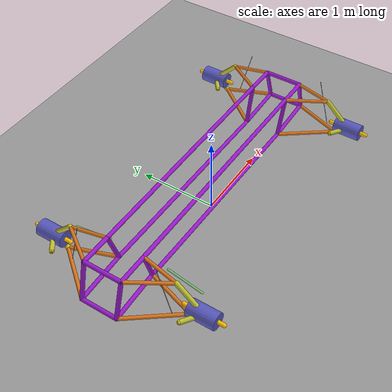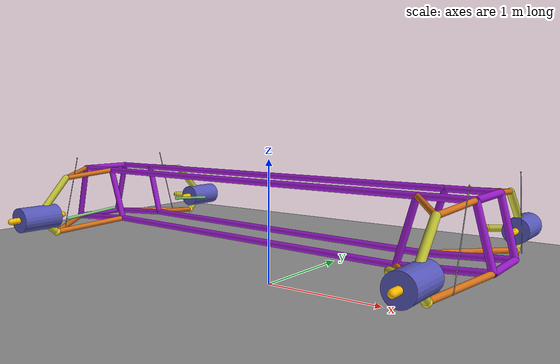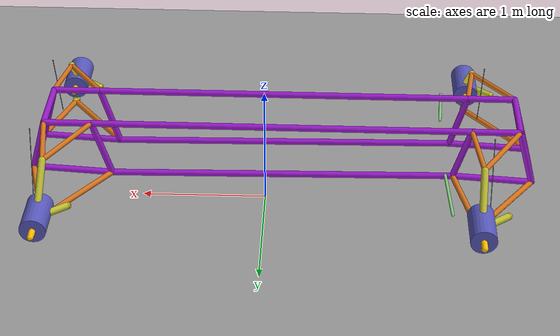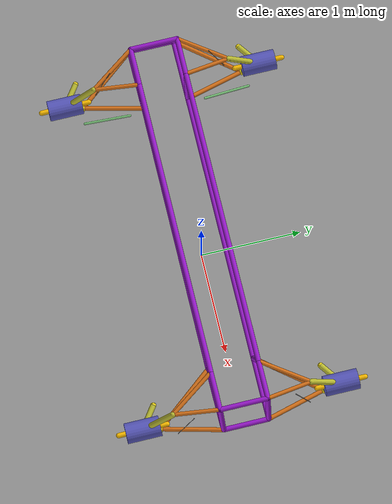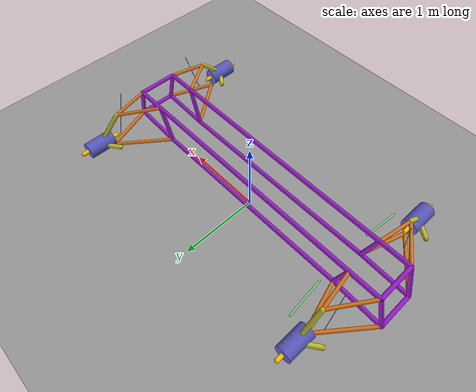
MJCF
<mujoco model="feda_double_wishbone">

  <compiler angle="radian" autolimits="true" />
  <option gravity="0 0 -9.81" timestep="0.002" integrator="implicitfast" />
  <size nconmax="200" />

  <default>
    <geom density="500" contype="1" conaffinity="1" />
    <joint limited="false" />
    <equality solimp="0.99 0.999 0.0001" solref="0.02 1" />
  </default>

  <worldbody>
    <geom name="ground" type="plane" size="50 50 0.1" rgba="0.6 0.6 0.6 1" contype="1" conaffinity="1" />

    <body name="chassis" pos="0 0 0.499">
      <freejoint name="chassis_free" />
      <inertial mass="5672.87" pos="-0.111 0.009 0.610" diaginertia="5740 7660 9870" />

      <site name="spring_c_fl" pos=" 1.7450 -0.493925  0.46209" />
      <site name="spring_c_fr" pos=" 1.7450  0.493925  0.46209" />
      <site name="spring_c_rl" pos="-1.7450 -0.493925  0.46209" />
      <site name="spring_c_rr" pos="-1.7450  0.493925  0.46209" />

      <geom type="capsule" fromto=" 1.69885 -0.2324  0.3469    1.32955 -0.2324  0.3469 " size="0.025" rgba="0.6 0.1 0.8 1" contype="0" conaffinity="0" />
      <geom type="capsule" fromto=" 1.8188  -0.22246 -0.0800    1.1988  -0.22451 -0.1190" size="0.025" rgba="0.6 0.1 0.8 1" contype="0" conaffinity="0" />
      <geom type="capsule" fromto=" 1.69885 -0.2324  0.3469    1.8188  -0.22246 -0.0800" size="0.025" rgba="0.6 0.1 0.8 1" contype="0" conaffinity="0" />
      <geom type="capsule" fromto=" 1.32955 -0.2324  0.3469    1.1988  -0.22451 -0.1190" size="0.025" rgba="0.6 0.1 0.8 1" contype="0" conaffinity="0" />

      <geom type="capsule" fromto=" 1.69885  0.2324  0.3469    1.32955  0.2324  0.3469 " size="0.025" rgba="0.6 0.1 0.8 1" contype="0" conaffinity="0" />
      <geom type="capsule" fromto=" 1.8188   0.22246 -0.0800    1.1988   0.22451 -0.1190" size="0.025" rgba="0.6 0.1 0.8 1" contype="0" conaffinity="0" />
      <geom type="capsule" fromto=" 1.69885  0.2324  0.3469    1.8188   0.22246 -0.0800" size="0.025" rgba="0.6 0.1 0.8 1" contype="0" conaffinity="0" />
      <geom type="capsule" fromto=" 1.32955  0.2324  0.3469    1.1988   0.22451 -0.1190" size="0.025" rgba="0.6 0.1 0.8 1" contype="0" conaffinity="0" />

      <geom type="capsule" fromto="-1.60325 -0.2324  0.3469   -1.97255 -0.2324  0.3469 " size="0.025" rgba="0.6 0.1 0.8 1" contype="0" conaffinity="0" />
      <geom type="capsule" fromto="-1.4832  -0.22246 -0.0800  -2.1032  -0.22451 -0.1190" size="0.025" rgba="0.6 0.1 0.8 1" contype="0" conaffinity="0" />
      <geom type="capsule" fromto="-1.60325 -0.2324  0.3469   -1.4832  -0.22246 -0.0800" size="0.025" rgba="0.6 0.1 0.8 1" contype="0" conaffinity="0" />
      <geom type="capsule" fromto="-1.97255 -0.2324  0.3469   -2.1032  -0.22451 -0.1190" size="0.025" rgba="0.6 0.1 0.8 1" contype="0" conaffinity="0" />

      <geom type="capsule" fromto="-1.60325  0.2324  0.3469   -1.97255  0.2324  0.3469 " size="0.025" rgba="0.6 0.1 0.8 1" contype="0" conaffinity="0" />
      <geom type="capsule" fromto="-1.4832   0.22246 -0.0800  -2.1032   0.22451 -0.1190" size="0.025" rgba="0.6 0.1 0.8 1" contype="0" conaffinity="0" />
      <geom type="capsule" fromto="-1.60325  0.2324  0.3469   -1.4832   0.22246 -0.0800" size="0.025" rgba="0.6 0.1 0.8 1" contype="0" conaffinity="0" />
      <geom type="capsule" fromto="-1.97255  0.2324  0.3469   -2.1032   0.22451 -0.1190" size="0.025" rgba="0.6 0.1 0.8 1" contype="0" conaffinity="0" />

      <geom type="capsule" fromto=" 1.69885 -0.2324  0.3469    1.69885  0.2324  0.3469 " size="0.025" rgba="0.6 0.1 0.8 1" contype="0" conaffinity="0" />
      <geom type="capsule" fromto=" 1.8188  -0.22246 -0.0800    1.8188   0.22246 -0.0800" size="0.025" rgba="0.6 0.1 0.8 1" contype="0" conaffinity="0" />

      <geom type="capsule" fromto="-1.97255 -0.2324  0.3469   -1.97255  0.2324  0.3469 " size="0.025" rgba="0.6 0.1 0.8 1" contype="0" conaffinity="0" />
      <geom type="capsule" fromto="-2.1032  -0.22451 -0.1190  -2.1032   0.22451 -0.1190" size="0.025" rgba="0.6 0.1 0.8 1" contype="0" conaffinity="0" />

      <geom type="capsule" fromto=" 1.32955 -0.2324  0.3469   -1.60325 -0.2324  0.3469 " size="0.025" rgba="0.6 0.1 0.8 1" contype="0" conaffinity="0" />
      <geom type="capsule" fromto=" 1.1988  -0.22451 -0.1190  -1.4832  -0.22246 -0.0800" size="0.025" rgba="0.6 0.1 0.8 1" contype="0" conaffinity="0" />
      <geom type="capsule" fromto=" 1.32955  0.2324  0.3469   -1.60325  0.2324  0.3469 " size="0.025" rgba="0.6 0.1 0.8 1" contype="0" conaffinity="0" />
      <geom type="capsule" fromto=" 1.1988   0.22451 -0.1190  -1.4832   0.22246 -0.0800" size="0.025" rgba="0.6 0.1 0.8 1" contype="0" conaffinity="0" />

      <body name="uca_fl" pos="1.5142 -0.2324 0.3469">
        <joint name="uca_fl_hinge" type="hinge" axis="1 0 0" />
        <inertial mass="8.45" pos="0.0397 -0.1474 -0.0137" diaginertia="0.03 0.03 0.06276" />
        <geom type="capsule" fromto=" 0.18465 0 0   0.11926 -0.4420 -0.04101" size="0.020" rgba="0.85 0.45 0.10 1" />
        <geom type="capsule" fromto="-0.18465 0 0   0.11926 -0.4420 -0.04101" size="0.020" rgba="0.85 0.45 0.10 1" />

        <body name="upright_fl" pos="0.11926 -0.4420 -0.04101">
          <joint name="upright_fl_steer" type="hinge" axis="0.05479 -0.28556 -0.95679" limited="true" range="-0.47947 0.47947" />
          <inertial mass="36.27" pos="0 0 0" diaginertia="0.1656 0.1934 0.04367" />

          <geom type="sphere" size="0.040" pos="0.01759 -0.30223 -0.30589" rgba="0.95 0.85 0.10 1" contype="0" conaffinity="0" />
          <geom type="capsule" fromto="0.01759 -0.30223 -0.30589   0 0 0" size="0.028" rgba="0.75 0.75 0.20 1" contype="0" conaffinity="0" />
          <geom type="capsule" fromto="0.01759 -0.30223 -0.30589   0.02548 -0.13279 -0.44493" size="0.028" rgba="0.75 0.75 0.20 1" contype="0" conaffinity="0" />
          <geom type="capsule" fromto="0.01759 -0.30223 -0.30589   -0.18941 -0.15178 -0.30589" size="0.028" rgba="0.75 0.75 0.20 1" contype="0" conaffinity="0" />
          <geom type="sphere" size="0.032" pos="0.02548 -0.13279 -0.44493" rgba="0.95 0.85 0.10 1" contype="0" conaffinity="0" />
          <geom type="sphere" size="0.028" pos="-0.18941 -0.15178 -0.30589" rgba="0.95 0.85 0.10 1" contype="0" conaffinity="0" />

          <body name="spindle_fl" pos="0.01759 -0.30223 -0.30589">
            <joint name="axle_fl" type="hinge" axis="0 1 0" />
            <inertial mass="74.2" pos="0 0 0" diaginertia="6.853 11.934 6.853" />

            <geom type="cylinder" fromto="0 -0.1675 0   0 0.1675 0" size="0.286" rgba="0 0 0 0" contype="1" conaffinity="1" />

            <geom type="cylinder" fromto="0 -0.168 0   0 0.168 0" size="0.10" rgba="0.35 0.35 0.75 1.0" contype="0" conaffinity="0" />
            <geom type="capsule" fromto="0 -0.238 0   0 0.238 0" size="0.025" rgba="1.0 0.75 0.0 1.0" contype="0" conaffinity="0" />
          </body>
        </body>
      </body>

      <body name="lca_fl" pos="1.5088 -0.22348 -0.0995">
        <joint name="lca_fl_hinge" type="hinge" axis="-0.9980 0 -0.0628" />
        <inertial mass="31.55" pos="0.0500 -0.1949 -0.0133" diaginertia="0.4 0.4 0.8938" />
        <geom type="capsule" fromto=" 0.31000  0.00102  0.01950   0.15008 -0.58371 -0.03954" size="0.022" rgba="0.85 0.45 0.10 1" />
        <geom type="capsule" fromto="-0.31000 -0.00103 -0.01950   0.15008 -0.58371 -0.03954" size="0.022" rgba="0.85 0.45 0.10 1" />

        <site name="spring_a_fl" pos="0.23616 -0.42805 -0.0195" />
      </body>

      <body name="uca_fr" pos="1.5142  0.2324  0.3469">
        <joint name="uca_fr_hinge" type="hinge" axis="1 0 0" />
        <inertial mass="8.45" pos="0.0397  0.1474 -0.0137" diaginertia="0.03 0.03 0.06276" />
        <geom type="capsule" fromto=" 0.18465 0 0   0.11926  0.4420 -0.04101" size="0.020" rgba="0.85 0.45 0.10 1" />
        <geom type="capsule" fromto="-0.18465 0 0   0.11926  0.4420 -0.04101" size="0.020" rgba="0.85 0.45 0.10 1" />

        <body name="upright_fr" pos="0.11926  0.4420 -0.04101">
          <joint name="upright_fr_steer" type="hinge" axis="0.05479 0.28556 -0.95679" limited="true" range="-0.47947 0.47947" />
          <inertial mass="36.27" pos="0 0 0" diaginertia="0.1656 0.1934 0.04367" />

          <geom type="sphere" size="0.040" pos="0.01759  0.30223 -0.30589" rgba="0.95 0.85 0.10 1" contype="0" conaffinity="0" />
          <geom type="capsule" fromto="0.01759  0.30223 -0.30589   0 0 0" size="0.028" rgba="0.75 0.75 0.20 1" contype="0" conaffinity="0" />
          <geom type="capsule" fromto="0.01759  0.30223 -0.30589   0.02548  0.13279 -0.44493" size="0.028" rgba="0.75 0.75 0.20 1" contype="0" conaffinity="0" />
          <geom type="capsule" fromto="0.01759  0.30223 -0.30589   -0.18941  0.15178 -0.30589" size="0.028" rgba="0.75 0.75 0.20 1" contype="0" conaffinity="0" />
          <geom type="sphere" size="0.032" pos="0.02548  0.13279 -0.44493" rgba="0.95 0.85 0.10 1" contype="0" conaffinity="0" />
          <geom type="sphere" size="0.028" pos="-0.18941  0.15178 -0.30589" rgba="0.95 0.85 0.10 1" contype="0" conaffinity="0" />

          <body name="spindle_fr" pos="0.01759  0.30223 -0.30589">
            <joint name="axle_fr" type="hinge" axis="0 1 0" />
            <inertial mass="74.2" pos="0 0 0" diaginertia="6.853 11.934 6.853" />

            <geom type="cylinder" fromto="0 -0.1675 0   0 0.1675 0" size="0.286" rgba="0 0 0 0" contype="1" conaffinity="1" />

            <geom type="cylinder" fromto="0 -0.168 0   0 0.168 0" size="0.10" rgba="0.35 0.35 0.75 1.0" contype="0" conaffinity="0" />
            <geom type="capsule" fromto="0 -0.238 0   0 0.238 0" size="0.025" rgba="1.0 0.75 0.0 1.0" contype="0" conaffinity="0" />
          </body>
        </body>
      </body>

      <body name="lca_fr" pos="1.5088  0.22348 -0.0995">
        <joint name="lca_fr_hinge" type="hinge" axis="-0.9980 0 -0.0628" />
        <inertial mass="31.55" pos="0.0500  0.1949 -0.0133" diaginertia="0.4 0.4 0.8938" />
        <geom type="capsule" fromto=" 0.31000 -0.00102  0.01950   0.15008  0.58371 -0.03954" size="0.022" rgba="0.85 0.45 0.10 1" />
        <geom type="capsule" fromto="-0.31000  0.00103 -0.01950   0.15008  0.58371 -0.03954" size="0.022" rgba="0.85 0.45 0.10 1" />

        <site name="spring_a_fr" pos="0.23616  0.42805 -0.0195" />
      </body>

      <body name="uca_rl" pos="-1.7879 -0.2324  0.3469">
        <joint name="uca_rl_hinge" type="hinge" axis="1 0 0" />
        <inertial mass="8.45" pos="0.0397 -0.1474 -0.0137" diaginertia="0.03 0.03 0.06276" />
        <geom type="capsule" fromto=" 0.18465 0 0   0.11926 -0.4420 -0.04101" size="0.020" rgba="0.85 0.45 0.10 1" />
        <geom type="capsule" fromto="-0.18465 0 0   0.11926 -0.4420 -0.04101" size="0.020" rgba="0.85 0.45 0.10 1" />

        <body name="upright_rl" pos="0.11926 -0.4420 -0.04101">
          <joint name="upright_rl_ball" type="ball" />
          <inertial mass="36.27" pos="0 0 0" diaginertia="0.1656 0.1934 0.04367" />

          <geom type="sphere" size="0.040" pos="0.01759 -0.30223 -0.30589" rgba="0.95 0.85 0.10 1" contype="0" conaffinity="0" />
          <geom type="capsule" fromto="0.01759 -0.30223 -0.30589   0 0 0" size="0.028" rgba="0.75 0.75 0.20 1" contype="0" conaffinity="0" />
          <geom type="capsule" fromto="0.01759 -0.30223 -0.30589   0.02548 -0.13279 -0.44493" size="0.028" rgba="0.75 0.75 0.20 1" contype="0" conaffinity="0" />
          <geom type="capsule" fromto="0.01759 -0.30223 -0.30589   -0.18941 -0.15178 -0.30589" size="0.028" rgba="0.75 0.75 0.20 1" contype="0" conaffinity="0" />
          <geom type="sphere" size="0.032" pos="0.02548 -0.13279 -0.44493" rgba="0.95 0.85 0.10 1" contype="0" conaffinity="0" />
          <geom type="sphere" size="0.028" pos="-0.18941 -0.15178 -0.30589" rgba="0.95 0.85 0.10 1" contype="0" conaffinity="0" />

          <body name="spindle_rl" pos="0.01759 -0.30223 -0.30589">
            <joint name="axle_rl" type="hinge" axis="0 1 0" />
            <inertial mass="74.2" pos="0 0 0" diaginertia="6.853 11.934 6.853" />

            <geom type="cylinder" fromto="0 -0.1675 0   0 0.1675 0" size="0.286" rgba="0 0 0 0" contype="1" conaffinity="1" />

            <geom type="cylinder" fromto="0 -0.168 0   0 0.168 0" size="0.10" rgba="0.35 0.35 0.75 1.0" contype="0" conaffinity="0" />
            <geom type="capsule" fromto="0 -0.238 0   0 0.238 0" size="0.025" rgba="1.0 0.75 0.0 1.0" contype="0" conaffinity="0" />
          </body>
        </body>
      </body>

      <body name="lca_rl" pos="-1.7932 -0.22348 -0.0995">
        <joint name="lca_rl_hinge" type="hinge" axis="-0.9980 0 -0.0628" />
        <inertial mass="31.55" pos="0.0500 -0.1949 -0.0133" diaginertia="0.4 0.4 0.8938" />
        <geom type="capsule" fromto=" 0.31000  0.00102  0.01950   0.15008 -0.58371 -0.03954" size="0.022" rgba="0.85 0.45 0.10 1" />
        <geom type="capsule" fromto="-0.31000 -0.00103 -0.01950   0.15008 -0.58371 -0.03954" size="0.022" rgba="0.85 0.45 0.10 1" />

        <site name="spring_a_rl" pos="0.04820 -0.42805 -0.0195" />
      </body>

      <body name="uca_rr" pos="-1.7879  0.2324  0.3469">
        <joint name="uca_rr_hinge" type="hinge" axis="1 0 0" />
        <inertial mass="8.45" pos="0.0397  0.1474 -0.0137" diaginertia="0.03 0.03 0.06276" />
        <geom type="capsule" fromto=" 0.18465 0 0   0.11926  0.4420 -0.04101" size="0.020" rgba="0.85 0.45 0.10 1" />
        <geom type="capsule" fromto="-0.18465 0 0   0.11926  0.4420 -0.04101" size="0.020" rgba="0.85 0.45 0.10 1" />

        <body name="upright_rr" pos="0.11926  0.4420 -0.04101">
          <joint name="upright_rr_ball" type="ball" />
          <inertial mass="36.27" pos="0 0 0" diaginertia="0.1656 0.1934 0.04367" />

          <geom type="sphere" size="0.040" pos="0.01759  0.30223 -0.30589" rgba="0.95 0.85 0.10 1" contype="0" conaffinity="0" />
          <geom type="capsule" fromto="0.01759  0.30223 -0.30589   0 0 0" size="0.028" rgba="0.75 0.75 0.20 1" contype="0" conaffinity="0" />
          <geom type="capsule" fromto="0.01759  0.30223 -0.30589   0.02548  0.13279 -0.44493" size="0.028" rgba="0.75 0.75 0.20 1" contype="0" conaffinity="0" />
          <geom type="capsule" fromto="0.01759  0.30223 -0.30589   -0.18941  0.15178 -0.30589" size="0.028" rgba="0.75 0.75 0.20 1" contype="0" conaffinity="0" />
          <geom type="sphere" size="0.032" pos="0.02548  0.13279 -0.44493" rgba="0.95 0.85 0.10 1" contype="0" conaffinity="0" />
          <geom type="sphere" size="0.028" pos="-0.18941  0.15178 -0.30589" rgba="0.95 0.85 0.10 1" contype="0" conaffinity="0" />

          <body name="spindle_rr" pos="0.01759  0.30223 -0.30589">
            <joint name="axle_rr" type="hinge" axis="0 1 0" />
            <inertial mass="74.2" pos="0 0 0" diaginertia="6.853 11.934 6.853" />

            <geom type="cylinder" fromto="0 -0.1675 0   0 0.1675 0" size="0.286" rgba="0 0 0 0" contype="1" conaffinity="1" />

            <geom type="cylinder" fromto="0 -0.168 0   0 0.168 0" size="0.10" rgba="0.35 0.35 0.75 1.0" contype="0" conaffinity="0" />
            <geom type="capsule" fromto="0 -0.238 0   0 0.238 0" size="0.025" rgba="1.0 0.75 0.0 1.0" contype="0" conaffinity="0" />
          </body>
        </body>
      </body>

      <body name="lca_rr" pos="-1.7932  0.22348 -0.0995">
        <joint name="lca_rr_hinge" type="hinge" axis="-0.9980 0 -0.0628" />
        <inertial mass="31.55" pos="0.0500  0.1949 -0.0133" diaginertia="0.4 0.4 0.8938" />
        <geom type="capsule" fromto=" 0.31000 -0.00102  0.01950   0.15008  0.58371 -0.03954" size="0.022" rgba="0.85 0.45 0.10 1" />
        <geom type="capsule" fromto="-0.31000  0.00103 -0.01950   0.15008  0.58371 -0.03954" size="0.022" rgba="0.85 0.45 0.10 1" />

        <site name="spring_a_rr" pos="0.04820  0.42805 -0.0195" />
      </body>

      <body name="tierod_rl" pos="-1.410 -0.379095 0.04">
        <joint name="tierod_rl_ball" type="ball" />
        <inertial mass="6.0" pos="-0.017 -0.224 -0.020" diaginertia="0.05 0.05 0.5" />
        <geom type="capsule" fromto="0 0 0   -0.034 -0.447 -0.040" size="0.012" rgba="0.50 0.80 0.50 1" />
      </body>
      <body name="tierod_rr" pos="-1.410  0.379095 0.04">
        <joint name="tierod_rr_ball" type="ball" />
        <inertial mass="6.0" pos="-0.017  0.224 -0.020" diaginertia="0.05 0.05 0.5" />
        <geom type="capsule" fromto="0 0 0   -0.034  0.447 -0.040" size="0.012" rgba="0.50 0.80 0.50 1" />
      </body>

      </body>
  </worldbody>

  <equality>

    <connect name="lca_fl_close" body1="lca_fl" body2="upright_fl" anchor="0.15008 -0.58371 -0.03954" />
    <connect name="lca_fr_close" body1="lca_fr" body2="upright_fr" anchor="0.15008  0.58371 -0.03954" />
    <connect name="lca_rl_close" body1="lca_rl" body2="upright_rl" anchor="0.15008 -0.58371 -0.03954" />
    <connect name="lca_rr_close" body1="lca_rr" body2="upright_rr" anchor="0.15008  0.58371 -0.03954" />

    <connect name="tierod_rl_end" body1="tierod_rl" body2="upright_rl" anchor="-0.034 -0.447 -0.040" />
    <connect name="tierod_rr_end" body1="tierod_rr" body2="upright_rr" anchor="-0.034  0.447 -0.040" />
  </equality>

  <tendon>
    <spatial name="tsda_fl" stiffness="76000" damping="23000" springlength="0.72763">
      <site site="spring_c_fl" />
      <site site="spring_a_fl" />
    </spatial>
    <spatial name="tsda_fr" stiffness="76000" damping="23000" springlength="0.72763">
      <site site="spring_c_fr" />
      <site site="spring_a_fr" />
    </spatial>
    <spatial name="tsda_rl" stiffness="76000" damping="23000" springlength="0.72763">
      <site site="spring_c_rl" />
      <site site="spring_a_rl" />
    </spatial>
    <spatial name="tsda_rr" stiffness="76000" damping="23000" springlength="0.72763">
      <site site="spring_c_rr" />
      <site site="spring_a_rr" />
    </spatial>
  </tendon>

  <actuator>

    <position name="steer_fl_act" joint="upright_fl_steer" kp="200000" kv="20000" ctrlrange="-0.47947 0.47947"/>
    <position name="steer_fr_act" joint="upright_fr_steer" kp="200000" kv="20000" ctrlrange="-0.47947 0.47947"/>

    <velocity name="axle_fl_act" joint="axle_fl" kv="800" />
    <velocity name="axle_fr_act" joint="axle_fr" kv="800" />
    <velocity name="axle_rl_act" joint="axle_rl" kv="800" />
    <velocity name="axle_rr_act" joint="axle_rr" kv="800" />
  </actuator>

</mujoco>
